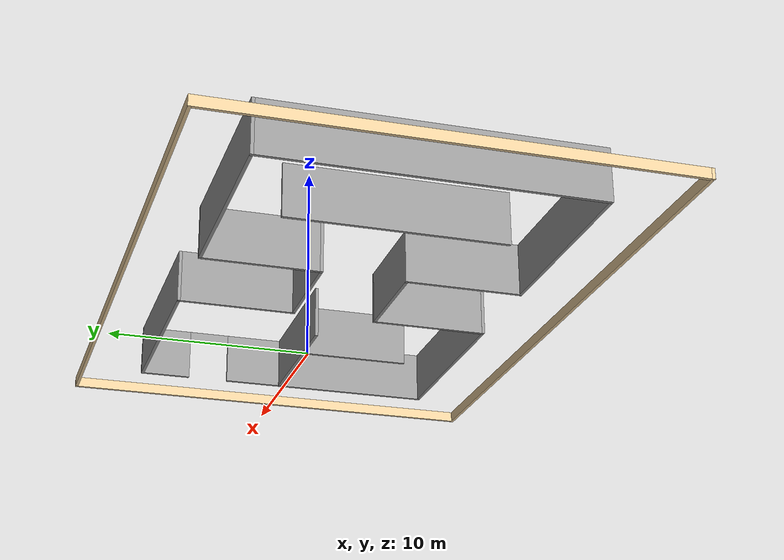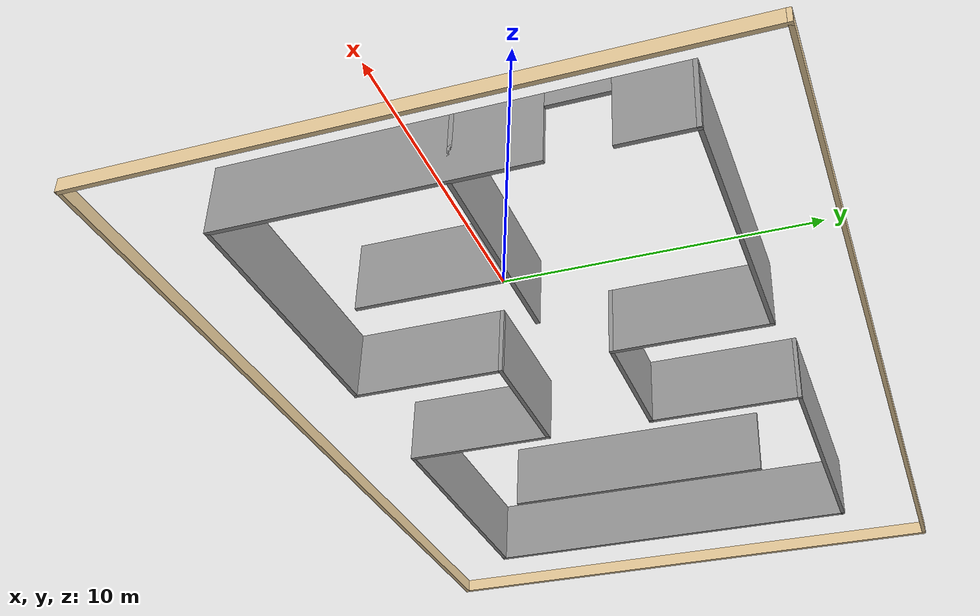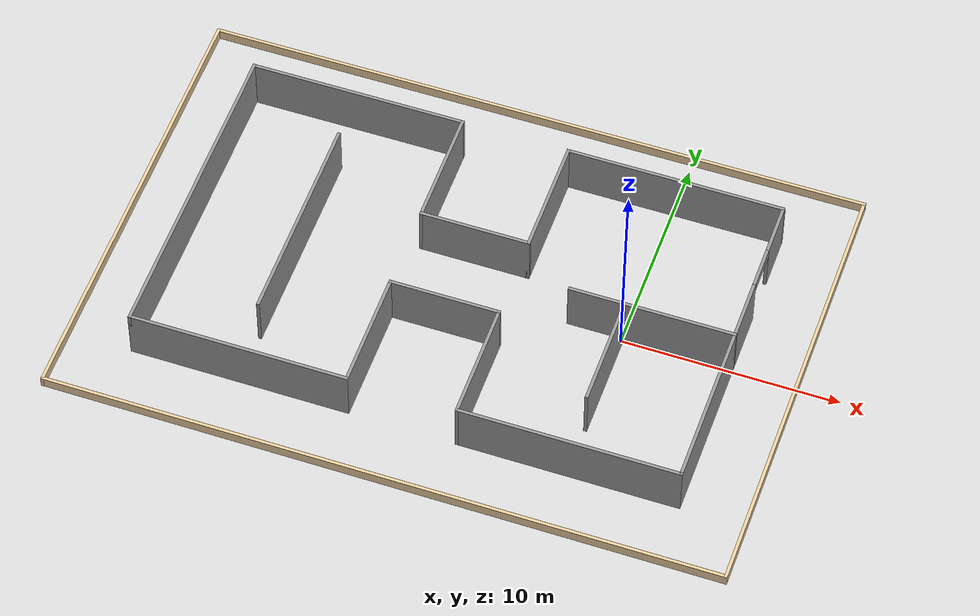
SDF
<?xml version='1.0'?>
<sdf version='1.6'>
  <model name='indoor_layout'>
    <pose frame=''>-7.5 0 0 0 -0 0</pose>
    <link name='Wall_0'>
      <pose frame=''>12.5 0 0 0 -0 1.5708</pose>
      <visual name='Wall_0_Visual_0'>
        <pose frame=''>-2.25008 0 1.25 0 -0 0</pose>
        <geometry>
          <box>
            <size>10.6498 0.15 2.5</size>
          </box>
        </geometry>
        <material>
          <script>
            <uri>file://media/materials/scripts/gazebo.material</uri>
            <name>Gazebo/Grey</name>
          </script>
          <ambient>1 1 1 1</ambient>
        </material>
        <meta>
          <layer>0</layer>
        </meta>
      </visual>
      <collision name='Wall_0_Collision_0'>
        <geometry>
          <box>
            <size>10.6498 0.15 2.5</size>
          </box>
        </geometry>
        <pose frame=''>-2.25008 0 1.25 0 -0 0</pose>
      </collision>
      <visual name='Wall_0_Visual_1'>
        <pose frame=''>6.32492 0 1.25 0 -0 0</pose>
        <geometry>
          <box>
            <size>2.50017 0.15 2.5</size>
          </box>
        </geometry>
        <material>
          <script>
            <uri>file://media/materials/scripts/gazebo.material</uri>
            <name>Gazebo/Grey</name>
          </script>
          <ambient>1 1 1 1</ambient>
        </material>
        <meta>
          <layer>0</layer>
        </meta>
      </visual>
      <collision name='Wall_0_Collision_1'>
        <geometry>
          <box>
            <size>2.50017 0.15 2.5</size>
          </box>
        </geometry>
        <pose frame=''>6.32492 0 1.25 0 -0 0</pose>
      </collision>
      <visual name='Wall_0_Visual_2'>
        <pose frame=''>4.07483 0 2.25 0 -0 0</pose>
        <geometry>
          <box>
            <size>2 0.15 0.5</size>
          </box>
        </geometry>
        <material>
          <script>
            <uri>file://media/materials/scripts/gazebo.material</uri>
            <name>Gazebo/Grey</name>
          </script>
          <ambient>1 1 1 1</ambient>
        </material>
        <meta>
          <layer>0</layer>
        </meta>
      </visual>
      <collision name='Wall_0_Collision_2'>
        <geometry>
          <box>
            <size>2 0.15 0.5</size>
          </box>
        </geometry>
        <pose frame=''>4.07483 0 2.25 0 -0 0</pose>
      </collision>
    </link>
    <link name='Wall_10'>
      <collision name='Wall_10_Collision'>
        <geometry>
          <box>
            <size>5.15 0.15 2.5</size>
          </box>
        </geometry>
        <pose frame=''>0 0 1.25 0 -0 0</pose>
      </collision>
      <visual name='Wall_10_Visual'>
        <pose frame=''>0 0 1.25 0 -0 0</pose>
        <geometry>
          <box>
            <size>5.15 0.15 2.5</size>
          </box>
        </geometry>
        <material>
          <script>
            <uri>file://media/materials/scripts/gazebo.material</uri>
            <name>Gazebo/Grey</name>
          </script>
          <ambient>1 1 1 1</ambient>
        </material>
        <meta>
          <layer>0</layer>
        </meta>
      </visual>
      <pose frame=''>-0 -2 0 0 -0 3.14159</pose>
    </link>
    <link name='Wall_12'>
      <collision name='Wall_12_Collision'>
        <geometry>
          <box>
            <size>5.15 0.15 2.5</size>
          </box>
        </geometry>
        <pose frame=''>0 0 1.25 0 -0 0</pose>
      </collision>
      <visual name='Wall_12_Visual'>
        <pose frame=''>0 0 1.25 0 -0 0</pose>
        <geometry>
          <box>
            <size>5.15 0.15 2.5</size>
          </box>
        </geometry>
        <material>
          <script>
            <uri>file://media/materials/scripts/gazebo.material</uri>
            <name>Gazebo/Grey</name>
          </script>
          <ambient>1 1 1 1</ambient>
        </material>
        <meta>
          <layer>0</layer>
        </meta>
      </visual>
      <pose frame=''>-0 2 0 0 -0 3.14159</pose>
    </link>
    <link name='Wall_14'>
      <collision name='Wall_14_Collision'>
        <geometry>
          <box>
            <size>5.65 0.15 2.5</size>
          </box>
        </geometry>
        <pose frame=''>0 0 1.25 0 -0 0</pose>
      </collision>
      <visual name='Wall_14_Visual'>
        <pose frame=''>0 0 1.25 0 -0 0</pose>
        <geometry>
          <box>
            <size>5.65 0.15 2.5</size>
          </box>
        </geometry>
        <material>
          <script>
            <uri>file://media/materials/scripts/gazebo.material</uri>
            <name>Gazebo/Grey</name>
          </script>
          <ambient>1 1 1 1</ambient>
        </material>
        <meta>
          <layer>0</layer>
        </meta>
      </visual>
      <pose frame=''>-2.5 -4.75 0 0 -0 1.5708</pose>
    </link>
    <link name='Wall_16'>
      <collision name='Wall_16_Collision'>
        <geometry>
          <box>
            <size>10.15 0.15 2.5</size>
          </box>
        </geometry>
        <pose frame=''>0 0 1.25 0 -0 0</pose>
      </collision>
      <visual name='Wall_16_Visual'>
        <pose frame=''>0 0 1.25 0 -0 0</pose>
        <geometry>
          <box>
            <size>10.15 0.15 2.5</size>
          </box>
        </geometry>
        <material>
          <script>
            <uri>file://media/materials/scripts/gazebo.material</uri>
            <name>Gazebo/Grey</name>
          </script>
          <ambient>1 1 1 1</ambient>
        </material>
        <meta>
          <layer>0</layer>
        </meta>
      </visual>
      <pose frame=''>-7.5 -7.5 0 0 -0 0</pose>
    </link>
    <link name='Wall_18'>
      <collision name='Wall_18_Collision'>
        <geometry>
          <box>
            <size>15.15 0.15 2.5</size>
          </box>
        </geometry>
        <pose frame=''>0 0 1.25 0 -0 0</pose>
      </collision>
      <visual name='Wall_18_Visual'>
        <pose frame=''>0 0 1.25 0 -0 0</pose>
        <geometry>
          <box>
            <size>15.15 0.15 2.5</size>
          </box>
        </geometry>
        <material>
          <script>
            <uri>file://media/materials/scripts/gazebo.material</uri>
            <name>Gazebo/Grey</name>
          </script>
          <ambient>1 1 1 1</ambient>
        </material>
        <meta>
          <layer>0</layer>
        </meta>
      </visual>
      <pose frame=''>-12.5 0 0 0 -0 -1.5708</pose>
    </link>
    <link name='Wall_2'>
      <collision name='Wall_2_Collision'>
        <geometry>
          <box>
            <size>10.15 0.15 2.5</size>
          </box>
        </geometry>
        <pose frame=''>0 0 1.25 0 -0 0</pose>
      </collision>
      <visual name='Wall_2_Visual'>
        <pose frame=''>0 0 1.25 0 -0 0</pose>
        <geometry>
          <box>
            <size>10.15 0.15 2.5</size>
          </box>
        </geometry>
        <material>
          <script>
            <uri>file://media/materials/scripts/gazebo.material</uri>
            <name>Gazebo/Grey</name>
          </script>
          <ambient>1 1 1 1</ambient>
        </material>
        <meta>
          <layer>0</layer>
        </meta>
      </visual>
      <pose frame=''>7.5 -7.5 0 0 -0 3.14159</pose>
    </link>
    <link name='Wall_20'>
      <collision name='Wall_20_Collision'>
        <geometry>
          <box>
            <size>10.15 0.15 2.5</size>
          </box>
        </geometry>
        <pose frame=''>0 0 1.25 0 -0 0</pose>
      </collision>
      <visual name='Wall_20_Visual'>
        <pose frame=''>0 0 1.25 0 -0 0</pose>
        <geometry>
          <box>
            <size>10.15 0.15 2.5</size>
          </box>
        </geometry>
        <material>
          <script>
            <uri>file://media/materials/scripts/gazebo.material</uri>
            <name>Gazebo/Grey</name>
          </script>
          <ambient>1 1 1 1</ambient>
        </material>
        <meta>
          <layer>0</layer>
        </meta>
      </visual>
      <pose frame=''>-7.5 7.5 0 0 -0 3.14159</pose>
    </link>
    <link name='Wall_22'>
      <collision name='Wall_22_Collision'>
        <geometry>
          <box>
            <size>5.65 0.15 2.5</size>
          </box>
        </geometry>
        <pose frame=''>0 0 1.25 0 -0 0</pose>
      </collision>
      <visual name='Wall_22_Visual'>
        <pose frame=''>0 0 1.25 0 -0 0</pose>
        <geometry>
          <box>
            <size>5.65 0.15 2.5</size>
          </box>
        </geometry>
        <material>
          <script>
            <uri>file://media/materials/scripts/gazebo.material</uri>
            <name>Gazebo/Grey</name>
          </script>
          <ambient>1 1 1 1</ambient>
        </material>
        <meta>
          <layer>0</layer>
        </meta>
      </visual>
      <pose frame=''>-2.5 4.75 0 0 -0 1.5708</pose>
    </link>
    <link name='Wall_24'>
      <collision name='Wall_24_Collision'>
        <geometry>
          <box>
            <size>7.65 0.15 2.5</size>
          </box>
        </geometry>
        <pose frame=''>0 0 1.25 0 -0 0</pose>
      </collision>
      <visual name='Wall_24_Visual'>
        <pose frame=''>0 0 1.25 0 -0 0</pose>
        <geometry>
          <box>
            <size>7.65 0.15 2.5</size>
          </box>
        </geometry>
        <material>
          <script>
            <uri>file://media/materials/scripts/gazebo.material</uri>
            <name>Gazebo/Grey</name>
          </script>
          <ambient>1 1 1 1</ambient>
        </material>
        <meta>
          <layer>0</layer>
        </meta>
      </visual>
      <pose frame=''>8.75 0.221 0 0 -0 0</pose>
    </link>
    <link name='Wall_26'>
      <collision name='Wall_26_Collision'>
        <geometry>
          <box>
            <size>5.15 0.15 2.5</size>
          </box>
        </geometry>
        <pose frame=''>0 0 1.25 0 -0 0</pose>
      </collision>
      <visual name='Wall_26_Visual'>
        <pose frame=''>0 0 1.25 0 -0 0</pose>
        <geometry>
          <box>
            <size>5.15 0.15 2.5</size>
          </box>
        </geometry>
        <material>
          <script>
            <uri>file://media/materials/scripts/gazebo.material</uri>
            <name>Gazebo/Grey</name>
          </script>
          <ambient>1 1 1 1</ambient>
        </material>
        <meta>
          <layer>0</layer>
        </meta>
      </visual>
      <pose frame=''>7.5 -2.5 0 0 -0 -1.5708</pose>
    </link>
    <link name='Wall_28'>
      <collision name='Wall_28_Collision'>
        <geometry>
          <box>
            <size>10.15 0.15 2.5</size>
          </box>
        </geometry>
        <pose frame=''>0 0 1.25 0 -0 0</pose>
      </collision>
      <visual name='Wall_28_Visual'>
        <pose frame=''>0 0 1.25 0 -0 0</pose>
        <geometry>
          <box>
            <size>10.15 0.15 2.5</size>
          </box>
        </geometry>
        <material>
          <script>
            <uri>file://media/materials/scripts/gazebo.material</uri>
            <name>Gazebo/Grey</name>
          </script>
          <ambient>1 1 1 1</ambient>
        </material>
        <meta>
          <layer>0</layer>
        </meta>
      </visual>
      <pose frame=''>-7.5 0 0 0 -0 1.5708</pose>
    </link>
    <link name='Wall_30'>
      <collision name='Wall_30_Collision'>
        <geometry>
          <box>
            <size>31.15 0.15 0.5</size>
          </box>
        </geometry>
        <pose frame=''>0 0 0.25 0 -0 0</pose>
      </collision>
      <visual name='Wall_30_Visual'>
        <pose frame=''>0 0 0.25 0 -0 0</pose>
        <geometry>
          <box>
            <size>31.15 0.15 0.5</size>
          </box>
        </geometry>
        <material>
          <script>
            <uri>file://media/materials/scripts/gazebo.material</uri>
            <name>Gazebo/Grey</name>
          </script>
          <ambient>0.921569 0.807843 0.615686 1</ambient>
        </material>
        <meta>
          <layer>0</layer>
        </meta>
      </visual>
      <pose frame=''>-0 10.5 0 0 -0 0</pose>
    </link>
    <link name='Wall_32'>
      <collision name='Wall_32_Collision'>
        <geometry>
          <box>
            <size>21.15 0.15 0.5</size>
          </box>
        </geometry>
        <pose frame=''>0 0 0.25 0 -0 0</pose>
      </collision>
      <visual name='Wall_32_Visual'>
        <pose frame=''>0 0 0.25 0 -0 0</pose>
        <geometry>
          <box>
            <size>21.15 0.15 0.5</size>
          </box>
        </geometry>
        <material>
          <script>
            <uri>file://media/materials/scripts/gazebo.material</uri>
            <name>Gazebo/Grey</name>
          </script>
          <ambient>0.921569 0.807843 0.615686 1</ambient>
        </material>
        <meta>
          <layer>0</layer>
        </meta>
      </visual>
      <pose frame=''>15.5 0 0 0 -0 1.5708</pose>
    </link>
    <link name='Wall_34'>
      <collision name='Wall_34_Collision'>
        <geometry>
          <box>
            <size>31.15 0.15 0.5</size>
          </box>
        </geometry>
        <pose frame=''>0 0 0.25 0 -0 0</pose>
      </collision>
      <visual name='Wall_34_Visual'>
        <pose frame=''>0 0 0.25 0 -0 0</pose>
        <geometry>
          <box>
            <size>31.15 0.15 0.5</size>
          </box>
        </geometry>
        <material>
          <script>
            <uri>file://media/materials/scripts/gazebo.material</uri>
            <name>Gazebo/Grey</name>
          </script>
          <ambient>0.921569 0.807843 0.615686 1</ambient>
        </material>
        <meta>
          <layer>0</layer>
        </meta>
      </visual>
      <pose frame=''>-0 -10.5 0 0 -0 3.14159</pose>
    </link>
    <link name='Wall_36'>
      <collision name='Wall_36_Collision'>
        <geometry>
          <box>
            <size>21.15 0.15 0.5</size>
          </box>
        </geometry>
        <pose frame=''>0 0 0.25 0 -0 0</pose>
      </collision>
      <visual name='Wall_36_Visual'>
        <pose frame=''>0 0 0.25 0 -0 0</pose>
        <geometry>
          <box>
            <size>21.15 0.15 0.5</size>
          </box>
        </geometry>
        <material>
          <script>
            <uri>file://media/materials/scripts/gazebo.material</uri>
            <name>Gazebo/Grey</name>
          </script>
          <ambient>0.921569 0.807843 0.615686 1</ambient>
        </material>
        <meta>
          <layer>0</layer>
        </meta>
      </visual>
      <pose frame=''>-15.5 0 0 0 -0 1.5708</pose>
    </link>
    <link name='Wall_4'>
      <collision name='Wall_4_Collision'>
        <geometry>
          <box>
            <size>10.15 0.15 2.5</size>
          </box>
        </geometry>
        <pose frame=''>0 0 1.25 0 -0 0</pose>
      </collision>
      <visual name='Wall_4_Visual'>
        <pose frame=''>0 0 1.25 0 -0 0</pose>
        <geometry>
          <box>
            <size>10.15 0.15 2.5</size>
          </box>
        </geometry>
        <material>
          <script>
            <uri>file://media/materials/scripts/gazebo.material</uri>
            <name>Gazebo/Grey</name>
          </script>
          <ambient>1 1 1 1</ambient>
        </material>
        <meta>
          <layer>0</layer>
        </meta>
      </visual>
      <pose frame=''>7.5 7.5 0 0 -0 3.14159</pose>
    </link>
    <link name='Wall_6'>
      <collision name='Wall_6_Collision'>
        <geometry>
          <box>
            <size>5.65 0.15 2.5</size>
          </box>
        </geometry>
        <pose frame=''>0 0 1.25 0 -0 0</pose>
      </collision>
      <visual name='Wall_6_Visual'>
        <pose frame=''>0 0 1.25 0 -0 0</pose>
        <geometry>
          <box>
            <size>5.65 0.15 2.5</size>
          </box>
        </geometry>
        <material>
          <script>
            <uri>file://media/materials/scripts/gazebo.material</uri>
            <name>Gazebo/Grey</name>
          </script>
          <ambient>1 1 1 1</ambient>
        </material>
        <meta>
          <layer>0</layer>
        </meta>
      </visual>
      <pose frame=''>2.5 -4.75 0 0 -0 1.5708</pose>
    </link>
    <link name='Wall_8'>
      <collision name='Wall_8_Collision'>
        <geometry>
          <box>
            <size>5.65 0.15 2.5</size>
          </box>
        </geometry>
        <pose frame=''>0 0 1.25 0 -0 0</pose>
      </collision>
      <visual name='Wall_8_Visual'>
        <pose frame=''>0 0 1.25 0 -0 0</pose>
        <geometry>
          <box>
            <size>5.65 0.15 2.5</size>
          </box>
        </geometry>
        <material>
          <script>
            <uri>file://media/materials/scripts/gazebo.material</uri>
            <name>Gazebo/Grey</name>
          </script>
          <ambient>1 1 1 1</ambient>
        </material>
        <meta>
          <layer>0</layer>
        </meta>
      </visual>
      <pose frame=''>2.5 4.75 0 0 -0 -1.5708</pose>
    </link>
    <static>1</static>
  </model>
</sdf>
